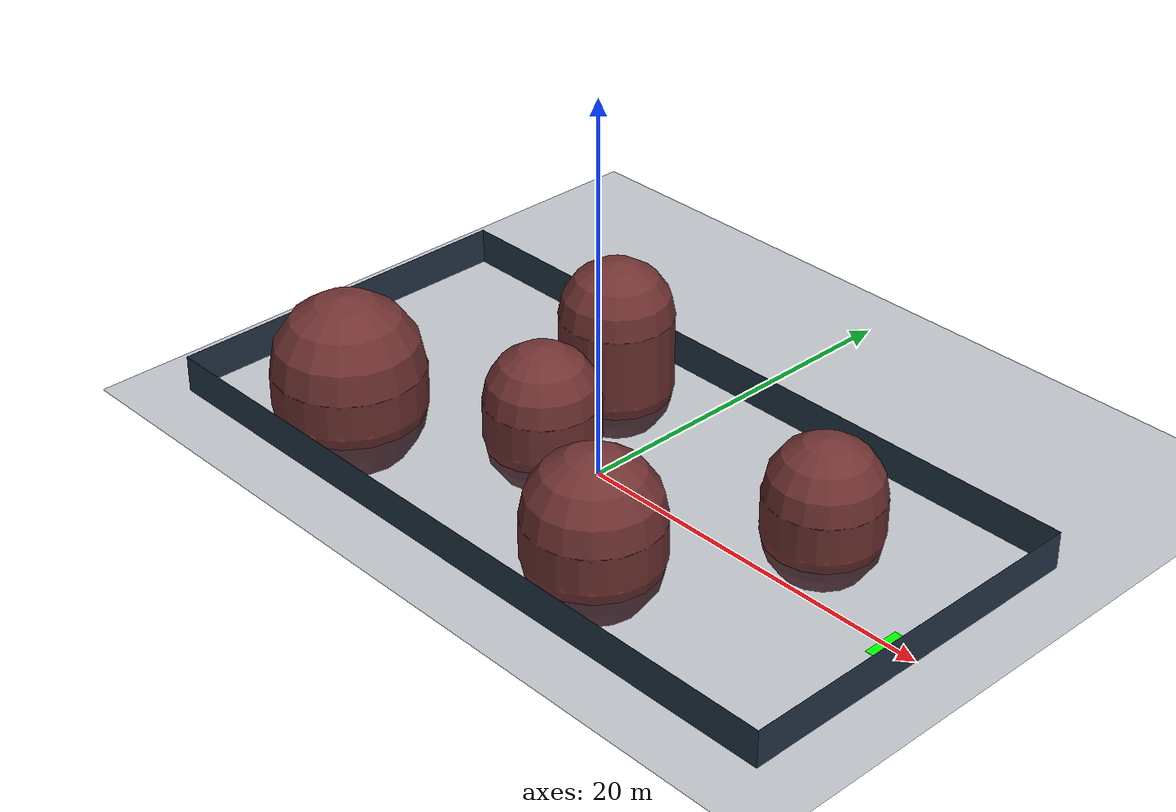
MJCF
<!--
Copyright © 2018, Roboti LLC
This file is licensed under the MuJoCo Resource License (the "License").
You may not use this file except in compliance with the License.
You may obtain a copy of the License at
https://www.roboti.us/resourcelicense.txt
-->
<mujoco>

    <size njmax = "500" nconmax = "100" />

    <compiler angle = 'radian' inertiafromgeom = "false" meshdir = "mesh_stl/"/>

	<default>

		<geom contype = '0' conaffinity = '0'/>
		<default class = 'collision-default'>
			<geom contype = '1' user = '2'/>
			<default class = 'collision-group-a'>
				<geom contype = '2' conaffinity = '4'/>
			</default>
			<default class = 'collision-group-b'>
				<geom contype = '4' conaffinity = '2'/>
			</default>

		</default>

    </default>

    <asset>
        <texture name="texplane" type="2d" builtin="checker" rgb1=".2 .3 .4" rgb2=".1 0.15 0.2"
            width="512" height="512" mark="cross" markrgb=".8 .8 .8"/>
        <material name="matplane" reflectance="0.3" texture="texplane" texrepeat="1 1" texuniform="true"/>
    </asset>

    <worldbody>
        <light directional="true" diffuse=".4 .4 .4" specular="0.1 0.1 0.1" pos="0 0 5.0" dir="0 0 -1" castshadow="false"/>
        <light directional="true" diffuse=".6 .6 .6" specular="0.2 0.2 0.2" pos="0 0 4" dir="0 0 -1"/>

        <geom name="ground" type="plane" size="0 0 1" pos="0 0 0" quat="1 0 0 0" material="matplane" condim="1"/>

        <body name="wall1_body" pos="20 0 1">
            <geom name="wall1_geom" type="plane" size="10 1 1" pos="0 0 0" quat="0.5 0.5 0.5 0.5" material="matplane" condim="1"/>
        </body>
        <body name="wall2_body" pos="0 10 1">
            <geom name="wall2_geom" type="plane" size="20 1 1" pos="0 0 0" quat="0.7071 0.7071 0 0 " material="matplane" condim="1"/>
        </body>
        <body name="wall3_body" pos="-20 0 1">
            <geom name="wall3_geom" type="plane" size="10 1 1" pos="0 0 0" quat="0.5 0.5 0.5 0.5" material="matplane" condim="1"/>
        </body>
        <body name="wall4_body" pos="0 -10 1">
            <geom name="wall4_geom" type="plane" size="20 1 1" pos="0 0 0" quat="0.7071 0.7071 0 0 " material="matplane" condim="1"/>
        </body>

        <body name="start_location_body" pos="19 0 0">
            <geom name="start_location_geom" size="1 1 0.01" type="box" rgba="0 1 0 1" />
        </body>
        <body name="end_location_body" pos="-19 0 0">
            <geom name="end_location_geom" size="1 1 0.01" type="box" rgba="1 0 0 1" />
        </body>

        <body name="obstacle_1_body" pos="-4 0 0.5">
            <geom name="obstacle_1_geom" fromto="0 0 0 0 0 2" size="3.0" type="capsule" rgba="0.45 0.2 0.2 1" />
        </body>
        <body name="obstacle_2_body" pos="11 4 0.5">
            <geom name="obstacle_2_geom" fromto="0 0 0 0 0 2" size="3.0" type="capsule" rgba="0.45 0.2 0.2 1" />
        </body>
        <body name="obstacle_3_body" pos="5 -5 0.5">
            <geom name="obstacle_3_geom" fromto="0 0 0 0 0 2" size="3.5" type="capsule" rgba="0.45 0.2 0.2 1" />
        </body>
        <body name="obstacle_4_body" pos="-13 -5 0.5">
            <geom name="obstacle_4_geom" fromto="0 0 0 0 0 2" size="4.0" type="capsule" rgba="0.45 0.2 0.2 1" />
        </body>
        <body name="obstacle_5_body" pos="-5 6 0.5">
            <geom name="obstacle_5_geom" fromto="0 0 0 0 0 4" size="3.0" type="capsule" rgba="0.45 0.2 0.2 1" />
        </body>

    </worldbody>
</mujoco>
